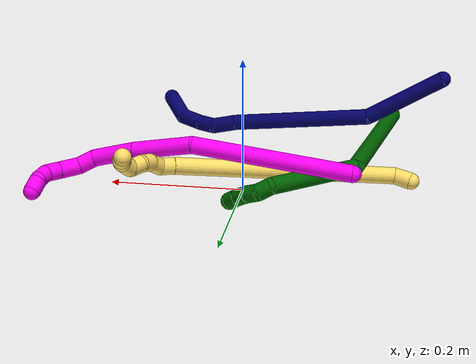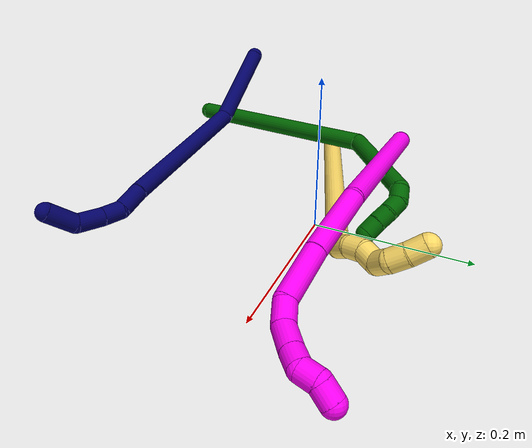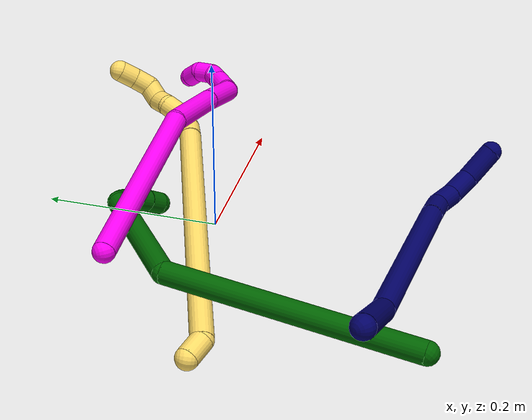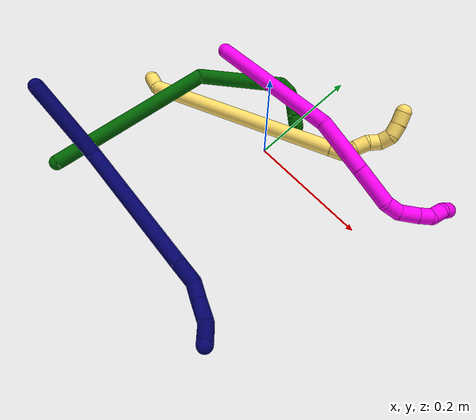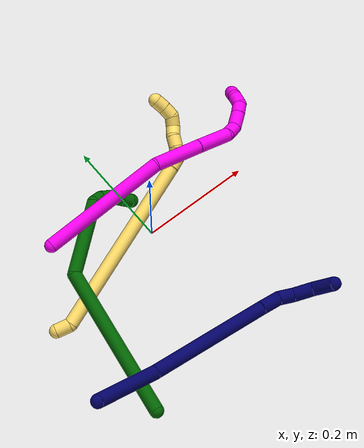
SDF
<sdf version="1.7">
 <world name="default">
  <model name="5">
   <static>0</static>
   <link name="5">
    <collision name="collision-cylinder-e_1_1_4">
     <pose>0.011432 0.002222 -0.006133 -2.79399 1.05226 -2.5544</pose>
     <geometry><cylinder><radius>0.0125</radius><length>0.026324</length></cylinder></geometry>
     <surface>
      <friction><ode><mu>1.16</mu><mu2>1.16</mu2><slip1>0</slip1><slip2>0</slip2></ode></friction>
      <contact><ode><kp>1e+06</kp><kd>1</kd><max_vel>0</max_vel><min_depth>0.001</min_depth></ode></contact>
     </surface>
    </collision>
    <visual name="visual-cylinder-e_1_1_4">
     <pose>0.011432 0.002222 -0.006133 -2.79399 1.05226 -2.5544</pose>
     <geometry><cylinder><radius>0.0125</radius><length>0.026324</length></cylinder></geometry>
     <material><ambient>1 0.858824 0.4 1</ambient></material>
    </visual>
    <collision name="collision-cylinder-e_2_4_5">
     <pose>0.176153 0.064251 0.007284 -1.25486 1.18129 -0.905145</pose>
     <geometry><cylinder><radius>0.0125</radius><length>0.331401</length></cylinder></geometry>
     <surface>
      <friction><ode><mu>1.16</mu><mu2>1.16</mu2><slip1>0</slip1><slip2>0</slip2></ode></friction>
      <contact><ode><kp>1e+06</kp><kd>1</kd><max_vel>0</max_vel><min_depth>0.001</min_depth></ode></contact>
     </surface>
    </collision>
    <visual name="visual-cylinder-e_2_4_5">
     <pose>0.176153 0.064251 0.007284 -1.25486 1.18129 -0.905145</pose>
     <geometry><cylinder><radius>0.0125</radius><length>0.331401</length></cylinder></geometry>
     <material><ambient>1 0.858824 0.4 1</ambient></material>
    </visual>
    <collision name="collision-cylinder-e_3_5_6">
     <pose>0.338532 0.128656 0.028415 -1.23962 1.07965 -0.808133</pose>
     <geometry><cylinder><radius>0.0125</radius><length>0.020616</length></cylinder></geometry>
     <surface>
      <friction><ode><mu>1.16</mu><mu2>1.16</mu2><slip1>0</slip1><slip2>0</slip2></ode></friction>
      <contact><ode><kp>1e+06</kp><kd>1</kd><max_vel>0</max_vel><min_depth>0.001</min_depth></ode></contact>
     </surface>
    </collision>
    <visual name="visual-cylinder-e_3_5_6">
     <pose>0.338532 0.128656 0.028415 -1.23962 1.07965 -0.808133</pose>
     <geometry><cylinder><radius>0.0125</radius><length>0.020616</length></cylinder></geometry>
     <material><ambient>1 0.858824 0.4 1</ambient></material>
    </visual>
    <collision name="collision-cylinder-e_4_6_7">
     <pose>0.355631 0.132158 0.036769 0.16029 0.862474 0.073877</pose>
     <geometry><cylinder><radius>0.0125</radius><length>0.021093</length></cylinder></geometry>
     <surface>
      <friction><ode><mu>1.16</mu><mu2>1.16</mu2><slip1>0</slip1><slip2>0</slip2></ode></friction>
      <contact><ode><kp>1e+06</kp><kd>1</kd><max_vel>0</max_vel><min_depth>0.001</min_depth></ode></contact>
     </surface>
    </collision>
    <visual name="visual-cylinder-e_4_6_7">
     <pose>0.355631 0.132158 0.036769 0.16029 0.862474 0.073877</pose>
     <geometry><cylinder><radius>0.0125</radius><length>0.021093</length></cylinder></geometry>
     <material><ambient>1 0.858824 0.4 1</ambient></material>
    </visual>
    <collision name="collision-cylinder-e_5_7_8">
     <pose>0.369515 0.132881 0.051577 -0.222491 0.619519 -0.071476</pose>
     <geometry><cylinder><radius>0.0125</radius><length>0.020236</length></cylinder></geometry>
     <surface>
      <friction><ode><mu>1.16</mu><mu2>1.16</mu2><slip1>0</slip1><slip2>0</slip2></ode></friction>
      <contact><ode><kp>1e+06</kp><kd>1</kd><max_vel>0</max_vel><min_depth>0.001</min_depth></ode></contact>
     </surface>
    </collision>
    <visual name="visual-cylinder-e_5_7_8">
     <pose>0.369515 0.132881 0.051577 -0.222491 0.619519 -0.071476</pose>
     <geometry><cylinder><radius>0.0125</radius><length>0.020236</length></cylinder></geometry>
     <material><ambient>1 0.858824 0.4 1</ambient></material>
    </visual>
    <collision name="collision-cylinder-e_6_8_9">
     <pose>0.38147 0.139967 0.065626 -0.719339 0.650097 -0.252099</pose>
     <geometry><cylinder><radius>0.0125</radius><length>0.02009</length></cylinder></geometry>
     <surface>
      <friction><ode><mu>1.16</mu><mu2>1.16</mu2><slip1>0</slip1><slip2>0</slip2></ode></friction>
      <contact><ode><kp>1e+06</kp><kd>1</kd><max_vel>0</max_vel><min_depth>0.001</min_depth></ode></contact>
     </surface>
    </collision>
    <visual name="visual-cylinder-e_6_8_9">
     <pose>0.38147 0.139967 0.065626 -0.719339 0.650097 -0.252099</pose>
     <geometry><cylinder><radius>0.0125</radius><length>0.02009</length></cylinder></geometry>
     <material><ambient>1 0.858824 0.4 1</ambient></material>
    </visual>
    <collision name="collision-cylinder-e_7_9_10">
     <pose>0.394828 0.143102 0.078274 0.31129 0.807188 0.133816</pose>
     <geometry><cylinder><radius>0.0125</radius><length>0.020151</length></cylinder></geometry>
     <surface>
      <friction><ode><mu>1.16</mu><mu2>1.16</mu2><slip1>0</slip1><slip2>0</slip2></ode></friction>
      <contact><ode><kp>1e+06</kp><kd>1</kd><max_vel>0</max_vel><min_depth>0.001</min_depth></ode></contact>
     </surface>
    </collision>
    <visual name="visual-cylinder-e_7_9_10">
     <pose>0.394828 0.143102 0.078274 0.31129 0.807188 0.133816</pose>
     <geometry><cylinder><radius>0.0125</radius><length>0.020151</length></cylinder></geometry>
     <material><ambient>1 0.858824 0.4 1</ambient></material>
    </visual>
    <collision name="collision-cylinder-e_8_10_11">
     <pose>0.404039 0.137791 0.094213 0.328859 0.194097 0.032305</pose>
     <geometry><cylinder><radius>0.0125</radius><length>0.020044</length></cylinder></geometry>
     <surface>
      <friction><ode><mu>1.16</mu><mu2>1.16</mu2><slip1>0</slip1><slip2>0</slip2></ode></friction>
      <contact><ode><kp>1e+06</kp><kd>1</kd><max_vel>0</max_vel><min_depth>0.001</min_depth></ode></contact>
     </surface>
    </collision>
    <visual name="visual-cylinder-e_8_10_11">
     <pose>0.404039 0.137791 0.094213 0.328859 0.194097 0.032305</pose>
     <geometry><cylinder><radius>0.0125</radius><length>0.020044</length></cylinder></geometry>
     <material><ambient>1 0.858824 0.4 1</ambient></material>
    </visual>
    <collision name="collision-cylinder-e_9_11_2">
     <pose>0.406663 0.130662 0.112704 0.406467 0.069063 0.014238</pose>
     <geometry><cylinder><radius>0.0125</radius><length>0.020045</length></cylinder></geometry>
     <surface>
      <friction><ode><mu>1.16</mu><mu2>1.16</mu2><slip1>0</slip1><slip2>0</slip2></ode></friction>
      <contact><ode><kp>1e+06</kp><kd>1</kd><max_vel>0</max_vel><min_depth>0.001</min_depth></ode></contact>
     </surface>
    </collision>
    <visual name="visual-cylinder-e_9_11_2">
     <pose>0.406663 0.130662 0.112704 0.406467 0.069063 0.014238</pose>
     <geometry><cylinder><radius>0.0125</radius><length>0.020045</length></cylinder></geometry>
     <material><ambient>1 0.858824 0.4 1</ambient></material>
    </visual>
    <collision name="collision-sphere-2">
     <pose>0.407355 0.126709 0.121888 0 -0 0</pose>
     <geometry><sphere><radius>0.0125</radius></sphere></geometry>
     <surface>
      <friction><ode><mu>1.16</mu><mu2>1.16</mu2><slip1>0</slip1><slip2>0</slip2></ode></friction>
      <contact><ode><kp>1e+06</kp><kd>1</kd><max_vel>0</max_vel><min_depth>0.001</min_depth></ode></contact>
     </surface>
    </collision>
    <visual name="visual-sphere-2">
     <pose>0.407355 0.126709 0.121888 0 -0 0</pose>
     <geometry><sphere><radius>0.0125</radius></sphere></geometry>
     <material><ambient>1 0.858824 0.4 1</ambient></material>
    </visual>
    <collision name="collision-sphere-11">
     <pose>0.405972 0.134615 0.10352 0 -0 0</pose>
     <geometry><sphere><radius>0.0125</radius></sphere></geometry>
     <surface>
      <friction><ode><mu>1.16</mu><mu2>1.16</mu2><slip1>0</slip1><slip2>0</slip2></ode></friction>
      <contact><ode><kp>1e+06</kp><kd>1</kd><max_vel>0</max_vel><min_depth>0.001</min_depth></ode></contact>
     </surface>
    </collision>
    <visual name="visual-sphere-11">
     <pose>0.405972 0.134615 0.10352 0 -0 0</pose>
     <geometry><sphere><radius>0.0125</radius></sphere></geometry>
     <material><ambient>1 0.858824 0.4 1</ambient></material>
    </visual>
    <collision name="collision-sphere-10">
     <pose>0.402106 0.140967 0.084906 0 -0 0</pose>
     <geometry><sphere><radius>0.0125</radius></sphere></geometry>
     <surface>
      <friction><ode><mu>1.16</mu><mu2>1.16</mu2><slip1>0</slip1><slip2>0</slip2></ode></friction>
      <contact><ode><kp>1e+06</kp><kd>1</kd><max_vel>0</max_vel><min_depth>0.001</min_depth></ode></contact>
     </surface>
    </collision>
    <visual name="visual-sphere-10">
     <pose>0.402106 0.140967 0.084906 0 -0 0</pose>
     <geometry><sphere><radius>0.0125</radius></sphere></geometry>
     <material><ambient>1 0.858824 0.4 1</ambient></material>
    </visual>
    <collision name="collision-sphere-9">
     <pose>0.38755 0.145236 0.071641 0 -0 0</pose>
     <geometry><sphere><radius>0.0125</radius></sphere></geometry>
     <surface>
      <friction><ode><mu>1.16</mu><mu2>1.16</mu2><slip1>0</slip1><slip2>0</slip2></ode></friction>
      <contact><ode><kp>1e+06</kp><kd>1</kd><max_vel>0</max_vel><min_depth>0.001</min_depth></ode></contact>
     </surface>
    </collision>
    <visual name="visual-sphere-9">
     <pose>0.38755 0.145236 0.071641 0 -0 0</pose>
     <geometry><sphere><radius>0.0125</radius></sphere></geometry>
     <material><ambient>1 0.858824 0.4 1</ambient></material>
    </visual>
    <collision name="collision-sphere-4">
     <pose>0.022863 0.004444 -0.012266 0 -0 0</pose>
     <geometry><sphere><radius>0.0125</radius></sphere></geometry>
     <surface>
      <friction><ode><mu>1.16</mu><mu2>1.16</mu2><slip1>0</slip1><slip2>0</slip2></ode></friction>
      <contact><ode><kp>1e+06</kp><kd>1</kd><max_vel>0</max_vel><min_depth>0.001</min_depth></ode></contact>
     </surface>
    </collision>
    <visual name="visual-sphere-4">
     <pose>0.022863 0.004444 -0.012266 0 -0 0</pose>
     <geometry><sphere><radius>0.0125</radius></sphere></geometry>
     <material><ambient>1 0.858824 0.4 1</ambient></material>
    </visual>
    <collision name="collision-sphere-1">
     <geometry><sphere><radius>0.0125</radius></sphere></geometry>
     <surface>
      <friction><ode><mu>1.16</mu><mu2>1.16</mu2><slip1>0</slip1><slip2>0</slip2></ode></friction>
      <contact><ode><kp>1e+06</kp><kd>1</kd><max_vel>0</max_vel><min_depth>0.001</min_depth></ode></contact>
     </surface>
    </collision>
    <visual name="visual-sphere-1">
     <geometry><sphere><radius>0.0125</radius></sphere></geometry>
     <material><ambient>1 0.858824 0.4 1</ambient></material>
    </visual>
    <collision name="collision-sphere-8">
     <pose>0.37539 0.134699 0.059611 0 -0 0</pose>
     <geometry><sphere><radius>0.0125</radius></sphere></geometry>
     <surface>
      <friction><ode><mu>1.16</mu><mu2>1.16</mu2><slip1>0</slip1><slip2>0</slip2></ode></friction>
      <contact><ode><kp>1e+06</kp><kd>1</kd><max_vel>0</max_vel><min_depth>0.001</min_depth></ode></contact>
     </surface>
    </collision>
    <visual name="visual-sphere-8">
     <pose>0.37539 0.134699 0.059611 0 -0 0</pose>
     <geometry><sphere><radius>0.0125</radius></sphere></geometry>
     <material><ambient>1 0.858824 0.4 1</ambient></material>
    </visual>
    <collision name="collision-sphere-5">
     <pose>0.329442 0.124058 0.026834 0 -0 0</pose>
     <geometry><sphere><radius>0.0125</radius></sphere></geometry>
     <surface>
      <friction><ode><mu>1.16</mu><mu2>1.16</mu2><slip1>0</slip1><slip2>0</slip2></ode></friction>
      <contact><ode><kp>1e+06</kp><kd>1</kd><max_vel>0</max_vel><min_depth>0.001</min_depth></ode></contact>
     </surface>
    </collision>
    <visual name="visual-sphere-5">
     <pose>0.329442 0.124058 0.026834 0 -0 0</pose>
     <geometry><sphere><radius>0.0125</radius></sphere></geometry>
     <material><ambient>1 0.858824 0.4 1</ambient></material>
    </visual>
    <collision name="collision-sphere-6">
     <pose>0.347621 0.133253 0.029996 0 -0 0</pose>
     <geometry><sphere><radius>0.0125</radius></sphere></geometry>
     <surface>
      <friction><ode><mu>1.16</mu><mu2>1.16</mu2><slip1>0</slip1><slip2>0</slip2></ode></friction>
      <contact><ode><kp>1e+06</kp><kd>1</kd><max_vel>0</max_vel><min_depth>0.001</min_depth></ode></contact>
     </surface>
    </collision>
    <visual name="visual-sphere-6">
     <pose>0.347621 0.133253 0.029996 0 -0 0</pose>
     <geometry><sphere><radius>0.0125</radius></sphere></geometry>
     <material><ambient>1 0.858824 0.4 1</ambient></material>
    </visual>
    <collision name="collision-sphere-7">
     <pose>0.36364 0.131063 0.043542 0 -0 0</pose>
     <geometry><sphere><radius>0.0125</radius></sphere></geometry>
     <surface>
      <friction><ode><mu>1.16</mu><mu2>1.16</mu2><slip1>0</slip1><slip2>0</slip2></ode></friction>
      <contact><ode><kp>1e+06</kp><kd>1</kd><max_vel>0</max_vel><min_depth>0.001</min_depth></ode></contact>
     </surface>
    </collision>
    <visual name="visual-sphere-7">
     <pose>0.36364 0.131063 0.043542 0 -0 0</pose>
     <geometry><sphere><radius>0.0125</radius></sphere></geometry>
     <material><ambient>1 0.858824 0.4 1</ambient></material>
    </visual>
    <inertial>
     <pose>0.225012 0.081114 0.023402 0 -0 0</pose>
     <mass>0.5</mass>
     <inertia>
      <ixx>-0.000158</ixx>
      <ixy>0</ixy>
      <ixz>0</ixz>
      <iyy>0.001802</iyy>
      <iyz>0</iyz>
      <izz>-0.003916</izz>
     </inertia>
    </inertial>
   </link>
   <pose>-0.244632 -0.047061 0.01149 -1.37357 -0.465747 0.156765</pose>
  </model>
  <model name="6">
   <static>0</static>
   <link name="6">
    <collision name="collision-cylinder-e_1_1_4">
     <pose>0.053975 0.124966 -0.030562 -1.81065 0.397248 -0.502051</pose>
     <geometry><cylinder><radius>0.0125</radius><length>0.279026</length></cylinder></geometry>
     <surface>
      <friction><ode><mu>1.16</mu><mu2>1.16</mu2><slip1>0</slip1><slip2>0</slip2></ode></friction>
      <contact><ode><kp>1e+06</kp><kd>1</kd><max_vel>0</max_vel><min_depth>0.001</min_depth></ode></contact>
     </surface>
    </collision>
    <visual name="visual-cylinder-e_1_1_4">
     <pose>0.053975 0.124966 -0.030562 -1.81065 0.397248 -0.502051</pose>
     <geometry><cylinder><radius>0.0125</radius><length>0.279026</length></cylinder></geometry>
     <material><ambient>0 0.392157 0.003922 1</ambient></material>
    </visual>
    <collision name="collision-cylinder-e_2_4_5">
     <pose>0.155255 0.293989 -0.033169 -1.00538 0.736452 -0.418053</pose>
     <geometry><cylinder><radius>0.0125</radius><length>0.140857</length></cylinder></geometry>
     <surface>
      <friction><ode><mu>1.16</mu><mu2>1.16</mu2><slip1>0</slip1><slip2>0</slip2></ode></friction>
      <contact><ode><kp>1e+06</kp><kd>1</kd><max_vel>0</max_vel><min_depth>0.001</min_depth></ode></contact>
     </surface>
    </collision>
    <visual name="visual-cylinder-e_2_4_5">
     <pose>0.155255 0.293989 -0.033169 -1.00538 0.736452 -0.418053</pose>
     <geometry><cylinder><radius>0.0125</radius><length>0.140857</length></cylinder></geometry>
     <material><ambient>0 0.392157 0.003922 1</ambient></material>
    </visual>
    <collision name="collision-cylinder-e_3_5_6">
     <pose>0.211719 0.338219 -0.001091 -0.041985 1.14759 -0.027139</pose>
     <geometry><cylinder><radius>0.0125</radius><length>0.020092</length></cylinder></geometry>
     <surface>
      <friction><ode><mu>1.16</mu><mu2>1.16</mu2><slip1>0</slip1><slip2>0</slip2></ode></friction>
      <contact><ode><kp>1e+06</kp><kd>1</kd><max_vel>0</max_vel><min_depth>0.001</min_depth></ode></contact>
     </surface>
    </collision>
    <visual name="visual-cylinder-e_3_5_6">
     <pose>0.211719 0.338219 -0.001091 -0.041985 1.14759 -0.027139</pose>
     <geometry><cylinder><radius>0.0125</radius><length>0.020092</length></cylinder></geometry>
     <material><ambient>0 0.392157 0.003922 1</ambient></material>
    </visual>
    <collision name="collision-cylinder-e_4_6_7">
     <pose>0.227311 0.334344 0.00954 0.556339 0.698139 0.207139</pose>
     <geometry><cylinder><radius>0.0125</radius><length>0.020014</length></cylinder></geometry>
     <surface>
      <friction><ode><mu>1.16</mu><mu2>1.16</mu2><slip1>0</slip1><slip2>0</slip2></ode></friction>
      <contact><ode><kp>1e+06</kp><kd>1</kd><max_vel>0</max_vel><min_depth>0.001</min_depth></ode></contact>
     </surface>
    </collision>
    <visual name="visual-cylinder-e_4_6_7">
     <pose>0.227311 0.334344 0.00954 0.556339 0.698139 0.207139</pose>
     <geometry><cylinder><radius>0.0125</radius><length>0.020014</length></cylinder></geometry>
     <material><ambient>0 0.392157 0.003922 1</ambient></material>
    </visual>
    <collision name="collision-cylinder-e_5_7_8">
     <pose>0.239848 0.324391 0.021333 0.840988 0.656476 0.302248</pose>
     <geometry><cylinder><radius>0.0125</radius><length>0.020005</length></cylinder></geometry>
     <surface>
      <friction><ode><mu>1.16</mu><mu2>1.16</mu2><slip1>0</slip1><slip2>0</slip2></ode></friction>
      <contact><ode><kp>1e+06</kp><kd>1</kd><max_vel>0</max_vel><min_depth>0.001</min_depth></ode></contact>
     </surface>
    </collision>
    <visual name="visual-cylinder-e_5_7_8">
     <pose>0.239848 0.324391 0.021333 0.840988 0.656476 0.302248</pose>
     <geometry><cylinder><radius>0.0125</radius><length>0.020005</length></cylinder></geometry>
     <material><ambient>0 0.392157 0.003922 1</ambient></material>
    </visual>
    <collision name="collision-cylinder-e_6_8_2">
     <pose>0.252498 0.312597 0.031365 0.892072 0.713236 0.352587</pose>
     <geometry><cylinder><radius>0.0125</radius><length>0.020006</length></cylinder></geometry>
     <surface>
      <friction><ode><mu>1.16</mu><mu2>1.16</mu2><slip1>0</slip1><slip2>0</slip2></ode></friction>
      <contact><ode><kp>1e+06</kp><kd>1</kd><max_vel>0</max_vel><min_depth>0.001</min_depth></ode></contact>
     </surface>
    </collision>
    <visual name="visual-cylinder-e_6_8_2">
     <pose>0.252498 0.312597 0.031365 0.892072 0.713236 0.352587</pose>
     <geometry><cylinder><radius>0.0125</radius><length>0.020006</length></cylinder></geometry>
     <material><ambient>0 0.392157 0.003922 1</ambient></material>
    </visual>
    <collision name="collision-sphere-2">
     <pose>0.259042 0.306709 0.036114 0 -0 0</pose>
     <geometry><sphere><radius>0.0125</radius></sphere></geometry>
     <surface>
      <friction><ode><mu>1.16</mu><mu2>1.16</mu2><slip1>0</slip1><slip2>0</slip2></ode></friction>
      <contact><ode><kp>1e+06</kp><kd>1</kd><max_vel>0</max_vel><min_depth>0.001</min_depth></ode></contact>
     </surface>
    </collision>
    <visual name="visual-sphere-2">
     <pose>0.259042 0.306709 0.036114 0 -0 0</pose>
     <geometry><sphere><radius>0.0125</radius></sphere></geometry>
     <material><ambient>0 0.392157 0.003922 1</ambient></material>
    </visual>
    <collision name="collision-sphere-4">
     <pose>0.10795 0.249932 -0.061124 0 -0 0</pose>
     <geometry><sphere><radius>0.0125</radius></sphere></geometry>
     <surface>
      <friction><ode><mu>1.16</mu><mu2>1.16</mu2><slip1>0</slip1><slip2>0</slip2></ode></friction>
      <contact><ode><kp>1e+06</kp><kd>1</kd><max_vel>0</max_vel><min_depth>0.001</min_depth></ode></contact>
     </surface>
    </collision>
    <visual name="visual-sphere-4">
     <pose>0.10795 0.249932 -0.061124 0 -0 0</pose>
     <geometry><sphere><radius>0.0125</radius></sphere></geometry>
     <material><ambient>0 0.392157 0.003922 1</ambient></material>
    </visual>
    <collision name="collision-sphere-1">
     <geometry><sphere><radius>0.0125</radius></sphere></geometry>
     <surface>
      <friction><ode><mu>1.16</mu><mu2>1.16</mu2><slip1>0</slip1><slip2>0</slip2></ode></friction>
      <contact><ode><kp>1e+06</kp><kd>1</kd><max_vel>0</max_vel><min_depth>0.001</min_depth></ode></contact>
     </surface>
    </collision>
    <visual name="visual-sphere-1">
     <geometry><sphere><radius>0.0125</radius></sphere></geometry>
     <material><ambient>0 0.392157 0.003922 1</ambient></material>
    </visual>
    <collision name="collision-sphere-8">
     <pose>0.245953 0.318485 0.026615 0 -0 0</pose>
     <geometry><sphere><radius>0.0125</radius></sphere></geometry>
     <surface>
      <friction><ode><mu>1.16</mu><mu2>1.16</mu2><slip1>0</slip1><slip2>0</slip2></ode></friction>
      <contact><ode><kp>1e+06</kp><kd>1</kd><max_vel>0</max_vel><min_depth>0.001</min_depth></ode></contact>
     </surface>
    </collision>
    <visual name="visual-sphere-8">
     <pose>0.245953 0.318485 0.026615 0 -0 0</pose>
     <geometry><sphere><radius>0.0125</radius></sphere></geometry>
     <material><ambient>0 0.392157 0.003922 1</ambient></material>
    </visual>
    <collision name="collision-sphere-5">
     <pose>0.202559 0.338046 -0.005214 0 -0 0</pose>
     <geometry><sphere><radius>0.0125</radius></sphere></geometry>
     <surface>
      <friction><ode><mu>1.16</mu><mu2>1.16</mu2><slip1>0</slip1><slip2>0</slip2></ode></friction>
      <contact><ode><kp>1e+06</kp><kd>1</kd><max_vel>0</max_vel><min_depth>0.001</min_depth></ode></contact>
     </surface>
    </collision>
    <visual name="visual-sphere-5">
     <pose>0.202559 0.338046 -0.005214 0 -0 0</pose>
     <geometry><sphere><radius>0.0125</radius></sphere></geometry>
     <material><ambient>0 0.392157 0.003922 1</ambient></material>
    </visual>
    <collision name="collision-sphere-6">
     <pose>0.220879 0.338392 0.003031 0 -0 0</pose>
     <geometry><sphere><radius>0.0125</radius></sphere></geometry>
     <surface>
      <friction><ode><mu>1.16</mu><mu2>1.16</mu2><slip1>0</slip1><slip2>0</slip2></ode></friction>
      <contact><ode><kp>1e+06</kp><kd>1</kd><max_vel>0</max_vel><min_depth>0.001</min_depth></ode></contact>
     </surface>
    </collision>
    <visual name="visual-sphere-6">
     <pose>0.220879 0.338392 0.003031 0 -0 0</pose>
     <geometry><sphere><radius>0.0125</radius></sphere></geometry>
     <material><ambient>0 0.392157 0.003922 1</ambient></material>
    </visual>
    <collision name="collision-sphere-7">
     <pose>0.233743 0.330296 0.01605 0 -0 0</pose>
     <geometry><sphere><radius>0.0125</radius></sphere></geometry>
     <surface>
      <friction><ode><mu>1.16</mu><mu2>1.16</mu2><slip1>0</slip1><slip2>0</slip2></ode></friction>
      <contact><ode><kp>1e+06</kp><kd>1</kd><max_vel>0</max_vel><min_depth>0.001</min_depth></ode></contact>
     </surface>
    </collision>
    <visual name="visual-sphere-7">
     <pose>0.233743 0.330296 0.01605 0 -0 0</pose>
     <geometry><sphere><radius>0.0125</radius></sphere></geometry>
     <material><ambient>0 0.392157 0.003922 1</ambient></material>
    </visual>
    <inertial>
     <pose>0.111164 0.205019 -0.023953 0 -0 0</pose>
     <mass>0.5</mass>
     <inertia>
      <ixx>0.000779</ixx>
      <ixy>0</ixy>
      <ixz>0</ixz>
      <iyy>-0.000728</iyy>
      <iyz>0</iyz>
      <izz>-0.002644</izz>
     </inertia>
    </inertial>
   </link>
   <pose>-0.204638 -0.272327 0.035219 0.791391 0.821353 0.522794</pose>
  </model>
  <model name="7">
   <static>0</static>
   <link name="7">
    <collision name="collision-cylinder-e_1_1_4">
     <pose>0.018866 -0.039595 0.051353 0.656828 0.283127 0.09705</pose>
     <geometry><cylinder><radius>0.0125</radius><length>0.135067</length></cylinder></geometry>
     <surface>
      <friction><ode><mu>1.16</mu><mu2>1.16</mu2><slip1>0</slip1><slip2>0</slip2></ode></friction>
      <contact><ode><kp>1e+06</kp><kd>1</kd><max_vel>0</max_vel><min_depth>0.001</min_depth></ode></contact>
     </surface>
    </collision>
    <visual name="visual-cylinder-e_1_1_4">
     <pose>0.018866 -0.039595 0.051353 0.656828 0.283127 0.09705</pose>
     <geometry><cylinder><radius>0.0125</radius><length>0.135067</length></cylinder></geometry>
     <material><ambient>0.003922 0 0.403922 1</ambient></material>
    </visual>
    <collision name="collision-cylinder-e_2_4_5">
     <pose>0.086367 -0.103577 0.199445 0.246952 0.453587 0.057263</pose>
     <geometry><cylinder><radius>0.0125</radius><length>0.221978</length></cylinder></geometry>
     <surface>
      <friction><ode><mu>1.16</mu><mu2>1.16</mu2><slip1>0</slip1><slip2>0</slip2></ode></friction>
      <contact><ode><kp>1e+06</kp><kd>1</kd><max_vel>0</max_vel><min_depth>0.001</min_depth></ode></contact>
     </surface>
    </collision>
    <visual name="visual-cylinder-e_2_4_5">
     <pose>0.086367 -0.103577 0.199445 0.246952 0.453587 0.057263</pose>
     <geometry><cylinder><radius>0.0125</radius><length>0.221978</length></cylinder></geometry>
     <material><ambient>0.003922 0 0.403922 1</ambient></material>
    </visual>
    <collision name="collision-cylinder-e_3_5_6">
     <pose>0.142593 -0.134053 0.312488 0.35736 0.411351 0.075323</pose>
     <geometry><cylinder><radius>0.0125</radius><length>0.037973</length></cylinder></geometry>
     <surface>
      <friction><ode><mu>1.16</mu><mu2>1.16</mu2><slip1>0</slip1><slip2>0</slip2></ode></friction>
      <contact><ode><kp>1e+06</kp><kd>1</kd><max_vel>0</max_vel><min_depth>0.001</min_depth></ode></contact>
     </surface>
    </collision>
    <visual name="visual-cylinder-e_3_5_6">
     <pose>0.142593 -0.134053 0.312488 0.35736 0.411351 0.075323</pose>
     <geometry><cylinder><radius>0.0125</radius><length>0.037973</length></cylinder></geometry>
     <material><ambient>0.003922 0 0.403922 1</ambient></material>
    </visual>
    <collision name="collision-cylinder-e_4_6_7">
     <pose>0.152471 -0.139575 0.342274 -0.04191 0.167767 -0.003524</pose>
     <geometry><cylinder><radius>0.0125</radius><length>0.027375</length></cylinder></geometry>
     <surface>
      <friction><ode><mu>1.16</mu><mu2>1.16</mu2><slip1>0</slip1><slip2>0</slip2></ode></friction>
      <contact><ode><kp>1e+06</kp><kd>1</kd><max_vel>0</max_vel><min_depth>0.001</min_depth></ode></contact>
     </surface>
    </collision>
    <visual name="visual-cylinder-e_4_6_7">
     <pose>0.152471 -0.139575 0.342274 -0.04191 0.167767 -0.003524</pose>
     <geometry><cylinder><radius>0.0125</radius><length>0.027375</length></cylinder></geometry>
     <material><ambient>0.003922 0 0.403922 1</ambient></material>
    </visual>
    <collision name="collision-cylinder-e_5_7_8">
     <pose>0.159182 -0.136256 0.373116 -0.15732 0.246701 -0.019544</pose>
     <geometry><cylinder><radius>0.0125</radius><length>0.036248</length></cylinder></geometry>
     <surface>
      <friction><ode><mu>1.16</mu><mu2>1.16</mu2><slip1>0</slip1><slip2>0</slip2></ode></friction>
      <contact><ode><kp>1e+06</kp><kd>1</kd><max_vel>0</max_vel><min_depth>0.001</min_depth></ode></contact>
     </surface>
    </collision>
    <visual name="visual-cylinder-e_5_7_8">
     <pose>0.159182 -0.136256 0.373116 -0.15732 0.246701 -0.019544</pose>
     <geometry><cylinder><radius>0.0125</radius><length>0.036248</length></cylinder></geometry>
     <material><ambient>0.003922 0 0.403922 1</ambient></material>
    </visual>
    <collision name="collision-cylinder-e_6_8_2">
     <pose>0.166821 -0.119373 0.405228 -0.763752 0.156022 -0.062764</pose>
     <geometry><cylinder><radius>0.0125</radius><length>0.041359</length></cylinder></geometry>
     <surface>
      <friction><ode><mu>1.16</mu><mu2>1.16</mu2><slip1>0</slip1><slip2>0</slip2></ode></friction>
      <contact><ode><kp>1e+06</kp><kd>1</kd><max_vel>0</max_vel><min_depth>0.001</min_depth></ode></contact>
     </surface>
    </collision>
    <visual name="visual-cylinder-e_6_8_2">
     <pose>0.166821 -0.119373 0.405228 -0.763752 0.156022 -0.062764</pose>
     <geometry><cylinder><radius>0.0125</radius><length>0.041359</length></cylinder></geometry>
     <material><ambient>0.003922 0 0.403922 1</ambient></material>
    </visual>
    <collision name="collision-sphere-2">
     <pose>0.170035 -0.105245 0.419982 0 -0 0</pose>
     <geometry><sphere><radius>0.0125</radius></sphere></geometry>
     <surface>
      <friction><ode><mu>1.16</mu><mu2>1.16</mu2><slip1>0</slip1><slip2>0</slip2></ode></friction>
      <contact><ode><kp>1e+06</kp><kd>1</kd><max_vel>0</max_vel><min_depth>0.001</min_depth></ode></contact>
     </surface>
    </collision>
    <visual name="visual-sphere-2">
     <pose>0.170035 -0.105245 0.419982 0 -0 0</pose>
     <geometry><sphere><radius>0.0125</radius></sphere></geometry>
     <material><ambient>0.003922 0 0.403922 1</ambient></material>
    </visual>
    <collision name="collision-sphere-4">
     <pose>0.037732 -0.07919 0.102706 0 -0 0</pose>
     <geometry><sphere><radius>0.0125</radius></sphere></geometry>
     <surface>
      <friction><ode><mu>1.16</mu><mu2>1.16</mu2><slip1>0</slip1><slip2>0</slip2></ode></friction>
      <contact><ode><kp>1e+06</kp><kd>1</kd><max_vel>0</max_vel><min_depth>0.001</min_depth></ode></contact>
     </surface>
    </collision>
    <visual name="visual-sphere-4">
     <pose>0.037732 -0.07919 0.102706 0 -0 0</pose>
     <geometry><sphere><radius>0.0125</radius></sphere></geometry>
     <material><ambient>0.003922 0 0.403922 1</ambient></material>
    </visual>
    <collision name="collision-sphere-1">
     <geometry><sphere><radius>0.0125</radius></sphere></geometry>
     <surface>
      <friction><ode><mu>1.16</mu><mu2>1.16</mu2><slip1>0</slip1><slip2>0</slip2></ode></friction>
      <contact><ode><kp>1e+06</kp><kd>1</kd><max_vel>0</max_vel><min_depth>0.001</min_depth></ode></contact>
     </surface>
    </collision>
    <visual name="visual-sphere-1">
     <geometry><sphere><radius>0.0125</radius></sphere></geometry>
     <material><ambient>0.003922 0 0.403922 1</ambient></material>
    </visual>
    <collision name="collision-sphere-8">
     <pose>0.163608 -0.133502 0.390474 0 -0 0</pose>
     <geometry><sphere><radius>0.0125</radius></sphere></geometry>
     <surface>
      <friction><ode><mu>1.16</mu><mu2>1.16</mu2><slip1>0</slip1><slip2>0</slip2></ode></friction>
      <contact><ode><kp>1e+06</kp><kd>1</kd><max_vel>0</max_vel><min_depth>0.001</min_depth></ode></contact>
     </surface>
    </collision>
    <visual name="visual-sphere-8">
     <pose>0.163608 -0.133502 0.390474 0 -0 0</pose>
     <geometry><sphere><radius>0.0125</radius></sphere></geometry>
     <material><ambient>0.003922 0 0.403922 1</ambient></material>
    </visual>
    <collision name="collision-sphere-5">
     <pose>0.135002 -0.127965 0.296184 0 -0 0</pose>
     <geometry><sphere><radius>0.0125</radius></sphere></geometry>
     <surface>
      <friction><ode><mu>1.16</mu><mu2>1.16</mu2><slip1>0</slip1><slip2>0</slip2></ode></friction>
      <contact><ode><kp>1e+06</kp><kd>1</kd><max_vel>0</max_vel><min_depth>0.001</min_depth></ode></contact>
     </surface>
    </collision>
    <visual name="visual-sphere-5">
     <pose>0.135002 -0.127965 0.296184 0 -0 0</pose>
     <geometry><sphere><radius>0.0125</radius></sphere></geometry>
     <material><ambient>0.003922 0 0.403922 1</ambient></material>
    </visual>
    <collision name="collision-sphere-6">
     <pose>0.150185 -0.14014 0.328791 0 -0 0</pose>
     <geometry><sphere><radius>0.0125</radius></sphere></geometry>
     <surface>
      <friction><ode><mu>1.16</mu><mu2>1.16</mu2><slip1>0</slip1><slip2>0</slip2></ode></friction>
      <contact><ode><kp>1e+06</kp><kd>1</kd><max_vel>0</max_vel><min_depth>0.001</min_depth></ode></contact>
     </surface>
    </collision>
    <visual name="visual-sphere-6">
     <pose>0.150185 -0.14014 0.328791 0 -0 0</pose>
     <geometry><sphere><radius>0.0125</radius></sphere></geometry>
     <material><ambient>0.003922 0 0.403922 1</ambient></material>
    </visual>
    <collision name="collision-sphere-7">
     <pose>0.154756 -0.139009 0.355758 0 -0 0</pose>
     <geometry><sphere><radius>0.0125</radius></sphere></geometry>
     <surface>
      <friction><ode><mu>1.16</mu><mu2>1.16</mu2><slip1>0</slip1><slip2>0</slip2></ode></friction>
      <contact><ode><kp>1e+06</kp><kd>1</kd><max_vel>0</max_vel><min_depth>0.001</min_depth></ode></contact>
     </surface>
    </collision>
    <visual name="visual-sphere-7">
     <pose>0.154756 -0.139009 0.355758 0 -0 0</pose>
     <geometry><sphere><radius>0.0125</radius></sphere></geometry>
     <material><ambient>0.003922 0 0.403922 1</ambient></material>
    </visual>
    <inertial>
     <pose>0.087956 -0.094254 0.205457 0 -0 0</pose>
     <mass>0.5</mass>
     <inertia>
      <ixx>0.001128</ixx>
      <ixy>0</ixy>
      <ixz>0</ixz>
      <iyy>0.001144</iyy>
      <iyz>0</iyz>
      <izz>-0.000113</izz>
     </inertia>
    </inertial>
   </link>
   <pose>-0.283354 -0.223324 0.116614 1.68047 -0.389558 0.94729</pose>
  </model>
  <model name="10">
   <static>0</static>
   <link name="10">
    <collision name="collision-cylinder-e_1_1_4">
     <pose>0.062261 -0.058153 0.076936 0.647242 0.573263 0.197084</pose>
     <geometry><cylinder><radius>0.0125</radius><length>0.229586</length></cylinder></geometry>
     <surface>
      <friction><ode><mu>1.16</mu><mu2>1.16</mu2><slip1>0</slip1><slip2>0</slip2></ode></friction>
      <contact><ode><kp>1e+06</kp><kd>1</kd><max_vel>0</max_vel><min_depth>0.001</min_depth></ode></contact>
     </surface>
    </collision>
    <visual name="visual-cylinder-e_1_1_4">
     <pose>0.062261 -0.058153 0.076936 0.647242 0.573263 0.197084</pose>
     <geometry><cylinder><radius>0.0125</radius><length>0.229586</length></cylinder></geometry>
     <material><ambient>1 0 0.964706 1</ambient></material>
    </visual>
    <collision name="collision-cylinder-e_2_4_5">
     <pose>0.134693 -0.144602 0.186987 0.707082 0.229405 0.084983</pose>
     <geometry><cylinder><radius>0.0125</radius><length>0.089458</length></cylinder></geometry>
     <surface>
      <friction><ode><mu>1.16</mu><mu2>1.16</mu2><slip1>0</slip1><slip2>0</slip2></ode></friction>
      <contact><ode><kp>1e+06</kp><kd>1</kd><max_vel>0</max_vel><min_depth>0.001</min_depth></ode></contact>
     </surface>
    </collision>
    <visual name="visual-cylinder-e_2_4_5">
     <pose>0.134693 -0.144602 0.186987 0.707082 0.229405 0.084983</pose>
     <geometry><cylinder><radius>0.0125</radius><length>0.089458</length></cylinder></geometry>
     <material><ambient>1 0 0.964706 1</ambient></material>
    </visual>
    <collision name="collision-cylinder-e_3_5_6">
     <pose>0.150495 -0.194968 0.242964 0.767776 0.175372 0.07099</pose>
     <geometry><cylinder><radius>0.0125</radius><length>0.064544</length></cylinder></geometry>
     <surface>
      <friction><ode><mu>1.16</mu><mu2>1.16</mu2><slip1>0</slip1><slip2>0</slip2></ode></friction>
      <contact><ode><kp>1e+06</kp><kd>1</kd><max_vel>0</max_vel><min_depth>0.001</min_depth></ode></contact>
     </surface>
    </collision>
    <visual name="visual-cylinder-e_3_5_6">
     <pose>0.150495 -0.194968 0.242964 0.767776 0.175372 0.07099</pose>
     <geometry><cylinder><radius>0.0125</radius><length>0.064544</length></cylinder></geometry>
     <material><ambient>1 0 0.964706 1</ambient></material>
    </visual>
    <collision name="collision-cylinder-e_4_6_7">
     <pose>0.158519 -0.228831 0.270205 1.2153 0.187975 0.130921</pose>
     <geometry><cylinder><radius>0.0125</radius><length>0.02561</length></cylinder></geometry>
     <surface>
      <friction><ode><mu>1.16</mu><mu2>1.16</mu2><slip1>0</slip1><slip2>0</slip2></ode></friction>
      <contact><ode><kp>1e+06</kp><kd>1</kd><max_vel>0</max_vel><min_depth>0.001</min_depth></ode></contact>
     </surface>
    </collision>
    <visual name="visual-cylinder-e_4_6_7">
     <pose>0.158519 -0.228831 0.270205 1.2153 0.187975 0.130921</pose>
     <geometry><cylinder><radius>0.0125</radius><length>0.02561</length></cylinder></geometry>
     <material><ambient>1 0 0.964706 1</ambient></material>
    </visual>
    <collision name="collision-cylinder-e_5_7_8">
     <pose>0.169549 -0.252991 0.275802 1.4726 0.607399 0.553495</pose>
     <geometry><cylinder><radius>0.0125</radius><length>0.030268</length></cylinder></geometry>
     <surface>
      <friction><ode><mu>1.16</mu><mu2>1.16</mu2><slip1>0</slip1><slip2>0</slip2></ode></friction>
      <contact><ode><kp>1e+06</kp><kd>1</kd><max_vel>0</max_vel><min_depth>0.001</min_depth></ode></contact>
     </surface>
    </collision>
    <visual name="visual-cylinder-e_5_7_8">
     <pose>0.169549 -0.252991 0.275802 1.4726 0.607399 0.553495</pose>
     <geometry><cylinder><radius>0.0125</radius><length>0.030268</length></cylinder></geometry>
     <material><ambient>1 0 0.964706 1</ambient></material>
    </visual>
    <collision name="collision-cylinder-e_6_8_9">
     <pose>0.184373 -0.273399 0.277166 1.5526 0.65576 0.644744</pose>
     <geometry><cylinder><radius>0.0125</radius><length>0.020292</length></cylinder></geometry>
     <surface>
      <friction><ode><mu>1.16</mu><mu2>1.16</mu2><slip1>0</slip1><slip2>0</slip2></ode></friction>
      <contact><ode><kp>1e+06</kp><kd>1</kd><max_vel>0</max_vel><min_depth>0.001</min_depth></ode></contact>
     </surface>
    </collision>
    <visual name="visual-cylinder-e_6_8_9">
     <pose>0.184373 -0.273399 0.277166 1.5526 0.65576 0.644744</pose>
     <geometry><cylinder><radius>0.0125</radius><length>0.020292</length></cylinder></geometry>
     <material><ambient>1 0 0.964706 1</ambient></material>
    </visual>
    <collision name="collision-cylinder-e_7_9_10">
     <pose>0.194887 -0.2885 0.271612 2.25003 0.444918 0.884223</pose>
     <geometry><cylinder><radius>0.0125</radius><length>0.020108</length></cylinder></geometry>
     <surface>
      <friction><ode><mu>1.16</mu><mu2>1.16</mu2><slip1>0</slip1><slip2>0</slip2></ode></friction>
      <contact><ode><kp>1e+06</kp><kd>1</kd><max_vel>0</max_vel><min_depth>0.001</min_depth></ode></contact>
     </surface>
    </collision>
    <visual name="visual-cylinder-e_7_9_10">
     <pose>0.194887 -0.2885 0.271612 2.25003 0.444918 0.884223</pose>
     <geometry><cylinder><radius>0.0125</radius><length>0.020108</length></cylinder></geometry>
     <material><ambient>1 0 0.964706 1</ambient></material>
    </visual>
    <collision name="collision-cylinder-e_8_10_2">
     <pose>0.198582 -0.304943 0.262316 1.93674 -0.062821 -0.091316</pose>
     <geometry><cylinder><radius>0.0125</radius><length>0.020134</length></cylinder></geometry>
     <surface>
      <friction><ode><mu>1.16</mu><mu2>1.16</mu2><slip1>0</slip1><slip2>0</slip2></ode></friction>
      <contact><ode><kp>1e+06</kp><kd>1</kd><max_vel>0</max_vel><min_depth>0.001</min_depth></ode></contact>
     </surface>
    </collision>
    <visual name="visual-cylinder-e_8_10_2">
     <pose>0.198582 -0.304943 0.262316 1.93674 -0.062821 -0.091316</pose>
     <geometry><cylinder><radius>0.0125</radius><length>0.020134</length></cylinder></geometry>
     <material><ambient>1 0 0.964706 1</ambient></material>
    </visual>
    <collision name="collision-sphere-2">
     <pose>0.19795 -0.314325 0.25872 0 -0 0</pose>
     <geometry><sphere><radius>0.0125</radius></sphere></geometry>
     <surface>
      <friction><ode><mu>1.16</mu><mu2>1.16</mu2><slip1>0</slip1><slip2>0</slip2></ode></friction>
      <contact><ode><kp>1e+06</kp><kd>1</kd><max_vel>0</max_vel><min_depth>0.001</min_depth></ode></contact>
     </surface>
    </collision>
    <visual name="visual-sphere-2">
     <pose>0.19795 -0.314325 0.25872 0 -0 0</pose>
     <geometry><sphere><radius>0.0125</radius></sphere></geometry>
     <material><ambient>1 0 0.964706 1</ambient></material>
    </visual>
    <collision name="collision-sphere-10">
     <pose>0.199214 -0.295561 0.265911 0 -0 0</pose>
     <geometry><sphere><radius>0.0125</radius></sphere></geometry>
     <surface>
      <friction><ode><mu>1.16</mu><mu2>1.16</mu2><slip1>0</slip1><slip2>0</slip2></ode></friction>
      <contact><ode><kp>1e+06</kp><kd>1</kd><max_vel>0</max_vel><min_depth>0.001</min_depth></ode></contact>
     </surface>
    </collision>
    <visual name="visual-sphere-10">
     <pose>0.199214 -0.295561 0.265911 0 -0 0</pose>
     <geometry><sphere><radius>0.0125</radius></sphere></geometry>
     <material><ambient>1 0 0.964706 1</ambient></material>
    </visual>
    <collision name="collision-sphere-9">
     <pose>0.19056 -0.281439 0.277313 0 -0 0</pose>
     <geometry><sphere><radius>0.0125</radius></sphere></geometry>
     <surface>
      <friction><ode><mu>1.16</mu><mu2>1.16</mu2><slip1>0</slip1><slip2>0</slip2></ode></friction>
      <contact><ode><kp>1e+06</kp><kd>1</kd><max_vel>0</max_vel><min_depth>0.001</min_depth></ode></contact>
     </surface>
    </collision>
    <visual name="visual-sphere-9">
     <pose>0.19056 -0.281439 0.277313 0 -0 0</pose>
     <geometry><sphere><radius>0.0125</radius></sphere></geometry>
     <material><ambient>1 0 0.964706 1</ambient></material>
    </visual>
    <collision name="collision-sphere-4">
     <pose>0.124522 -0.116307 0.153873 0 -0 0</pose>
     <geometry><sphere><radius>0.0125</radius></sphere></geometry>
     <surface>
      <friction><ode><mu>1.16</mu><mu2>1.16</mu2><slip1>0</slip1><slip2>0</slip2></ode></friction>
      <contact><ode><kp>1e+06</kp><kd>1</kd><max_vel>0</max_vel><min_depth>0.001</min_depth></ode></contact>
     </surface>
    </collision>
    <visual name="visual-sphere-4">
     <pose>0.124522 -0.116307 0.153873 0 -0 0</pose>
     <geometry><sphere><radius>0.0125</radius></sphere></geometry>
     <material><ambient>1 0 0.964706 1</ambient></material>
    </visual>
    <collision name="collision-sphere-1">
     <geometry><sphere><radius>0.0125</radius></sphere></geometry>
     <surface>
      <friction><ode><mu>1.16</mu><mu2>1.16</mu2><slip1>0</slip1><slip2>0</slip2></ode></friction>
      <contact><ode><kp>1e+06</kp><kd>1</kd><max_vel>0</max_vel><min_depth>0.001</min_depth></ode></contact>
     </surface>
    </collision>
    <visual name="visual-sphere-1">
     <geometry><sphere><radius>0.0125</radius></sphere></geometry>
     <material><ambient>1 0 0.964706 1</ambient></material>
    </visual>
    <collision name="collision-sphere-8">
     <pose>0.178186 -0.265358 0.27702 0 -0 0</pose>
     <geometry><sphere><radius>0.0125</radius></sphere></geometry>
     <surface>
      <friction><ode><mu>1.16</mu><mu2>1.16</mu2><slip1>0</slip1><slip2>0</slip2></ode></friction>
      <contact><ode><kp>1e+06</kp><kd>1</kd><max_vel>0</max_vel><min_depth>0.001</min_depth></ode></contact>
     </surface>
    </collision>
    <visual name="visual-sphere-8">
     <pose>0.178186 -0.265358 0.27702 0 -0 0</pose>
     <geometry><sphere><radius>0.0125</radius></sphere></geometry>
     <material><ambient>1 0 0.964706 1</ambient></material>
    </visual>
    <collision name="collision-sphere-5">
     <pose>0.144865 -0.172898 0.220102 0 -0 0</pose>
     <geometry><sphere><radius>0.0125</radius></sphere></geometry>
     <surface>
      <friction><ode><mu>1.16</mu><mu2>1.16</mu2><slip1>0</slip1><slip2>0</slip2></ode></friction>
      <contact><ode><kp>1e+06</kp><kd>1</kd><max_vel>0</max_vel><min_depth>0.001</min_depth></ode></contact>
     </surface>
    </collision>
    <visual name="visual-sphere-5">
     <pose>0.144865 -0.172898 0.220102 0 -0 0</pose>
     <geometry><sphere><radius>0.0125</radius></sphere></geometry>
     <material><ambient>1 0 0.964706 1</ambient></material>
    </visual>
    <collision name="collision-sphere-6">
     <pose>0.156126 -0.217038 0.265827 0 -0 0</pose>
     <geometry><sphere><radius>0.0125</radius></sphere></geometry>
     <surface>
      <friction><ode><mu>1.16</mu><mu2>1.16</mu2><slip1>0</slip1><slip2>0</slip2></ode></friction>
      <contact><ode><kp>1e+06</kp><kd>1</kd><max_vel>0</max_vel><min_depth>0.001</min_depth></ode></contact>
     </surface>
    </collision>
    <visual name="visual-sphere-6">
     <pose>0.156126 -0.217038 0.265827 0 -0 0</pose>
     <geometry><sphere><radius>0.0125</radius></sphere></geometry>
     <material><ambient>1 0 0.964706 1</ambient></material>
    </visual>
    <collision name="collision-sphere-7">
     <pose>0.160912 -0.240624 0.274583 0 -0 0</pose>
     <geometry><sphere><radius>0.0125</radius></sphere></geometry>
     <surface>
      <friction><ode><mu>1.16</mu><mu2>1.16</mu2><slip1>0</slip1><slip2>0</slip2></ode></friction>
      <contact><ode><kp>1e+06</kp><kd>1</kd><max_vel>0</max_vel><min_depth>0.001</min_depth></ode></contact>
     </surface>
    </collision>
    <visual name="visual-sphere-7">
     <pose>0.160912 -0.240624 0.274583 0 -0 0</pose>
     <geometry><sphere><radius>0.0125</radius></sphere></geometry>
     <material><ambient>1 0 0.964706 1</ambient></material>
    </visual>
    <inertial>
     <pose>0.113814 -0.139755 0.163416 0 -0 0</pose>
     <mass>0.5</mass>
     <inertia>
      <ixx>0.001125</ixx>
      <ixy>0</ixy>
      <ixz>0</ixz>
      <iyy>0.001083</iyy>
      <iyz>0</iyz>
      <izz>2.7e-05</izz>
     </inertia>
    </inertial>
   </link>
   <pose>-0.165942 0.0654 0.062947 1.55333 -0.910528 0.748216</pose>
  </model>
 </world>
</sdf>
